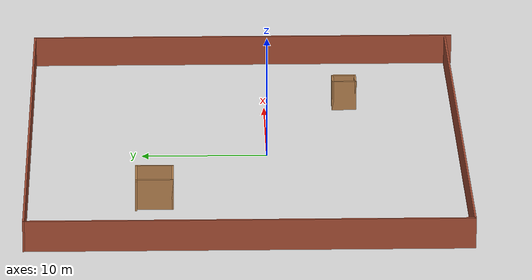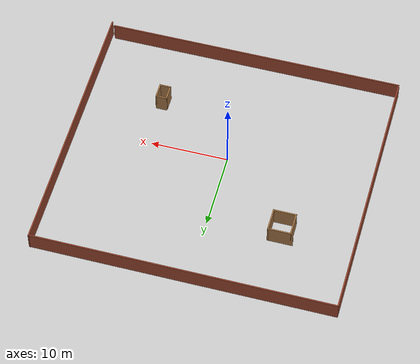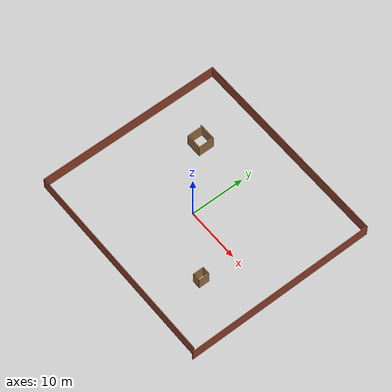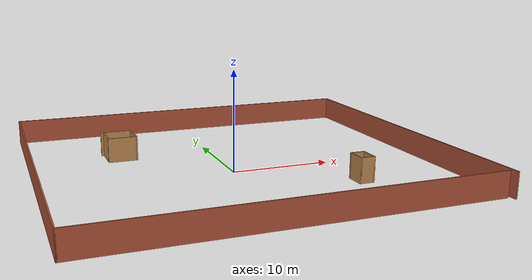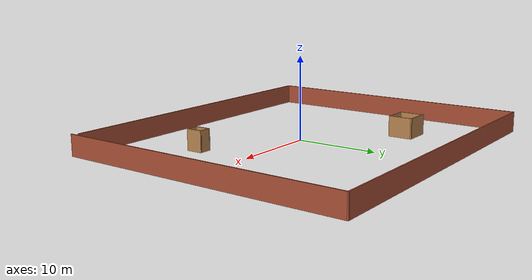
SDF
<?xml version='1.0'?>
<sdf version='1.6'>
  <model name='Scenerio_test_formation'>
    <pose frame=''>0.677154 1.51382 0 0 -0 0</pose>
    <link name='Wall_10'>
      <collision name='Wall_10_Collision'>
        <geometry>
          <box>
            <size>38.25 0.15 2.5</size>
          </box>
        </geometry>
        <pose frame=''>0 0 1.25 0 -0 0</pose>
      </collision>
      <visual name='Wall_10_Visual'>
        <pose frame=''>0 0 1.25 0 -0 0</pose>
        <geometry>
          <box>
            <size>38.25 0.15 2.5</size>
          </box>
        </geometry>
        <material>
          <script>
            <uri>file://media/materials/scripts/gazebo.material</uri>
            <name>Gazebo/Bricks</name>
          </script>
          <ambient>1 1 1 1</ambient>
        </material>
        <meta>
          <layer>0</layer>
        </meta>
      </visual>
      <pose frame=''>-0.25 -16.925 0 0 -0 0</pose>
    </link>
    <link name='Wall_12'>
      <collision name='Wall_12_Collision'>
        <geometry>
          <box>
            <size>3 0.15 2.5</size>
          </box>
        </geometry>
        <pose frame=''>0 0 1.25 0 -0 0</pose>
      </collision>
      <visual name='Wall_12_Visual'>
        <pose frame=''>0 0 1.25 0 -0 0</pose>
        <geometry>
          <box>
            <size>3 0.15 2.5</size>
          </box>
        </geometry>
        <material>
          <script>
            <uri>file://media/materials/scripts/gazebo.material</uri>
            <name>Gazebo/Wood</name>
          </script>
          <ambient>1 1 1 1</ambient>
        </material>
        <meta>
          <layer>0</layer>
        </meta>
      </visual>
      <pose frame=''>-11.3902 7.47323 0 0 -0 -1.5708</pose>
    </link>
    <link name='Wall_13'>
      <collision name='Wall_13_Collision'>
        <geometry>
          <box>
            <size>3 0.15 2.5</size>
          </box>
        </geometry>
        <pose frame=''>0 0 1.25 0 -0 0</pose>
      </collision>
      <visual name='Wall_13_Visual'>
        <pose frame=''>0 0 1.25 0 -0 0</pose>
        <geometry>
          <box>
            <size>3 0.15 2.5</size>
          </box>
        </geometry>
        <material>
          <script>
            <uri>file://media/materials/scripts/gazebo.material</uri>
            <name>Gazebo/Wood</name>
          </script>
          <ambient>1 1 1 1</ambient>
        </material>
        <meta>
          <layer>0</layer>
        </meta>
      </visual>
      <pose frame=''>-9.96522 6.04823 0 0 -0 0</pose>
    </link>
    <link name='Wall_14'>
      <collision name='Wall_14_Collision'>
        <geometry>
          <box>
            <size>3 0.15 2.5</size>
          </box>
        </geometry>
        <pose frame=''>0 0 1.25 0 -0 0</pose>
      </collision>
      <visual name='Wall_14_Visual'>
        <pose frame=''>0 0 1.25 0 -0 0</pose>
        <geometry>
          <box>
            <size>3 0.15 2.5</size>
          </box>
        </geometry>
        <material>
          <script>
            <uri>file://media/materials/scripts/gazebo.material</uri>
            <name>Gazebo/Wood</name>
          </script>
          <ambient>1 1 1 1</ambient>
        </material>
        <meta>
          <layer>0</layer>
        </meta>
      </visual>
      <pose frame=''>-8.54022 7.47323 0 0 -0 1.5708</pose>
    </link>
    <link name='Wall_15'>
      <collision name='Wall_15_Collision'>
        <geometry>
          <box>
            <size>3.25 0.15 2.5</size>
          </box>
        </geometry>
        <pose frame=''>0 0 1.25 0 -0 0</pose>
      </collision>
      <visual name='Wall_15_Visual'>
        <pose frame=''>0 0 1.25 0 -0 0</pose>
        <geometry>
          <box>
            <size>3.25 0.15 2.5</size>
          </box>
        </geometry>
        <material>
          <script>
            <uri>file://media/materials/scripts/gazebo.material</uri>
            <name>Gazebo/Wood</name>
          </script>
          <ambient>1 1 1 1</ambient>
        </material>
        <meta>
          <layer>0</layer>
        </meta>
      </visual>
      <pose frame=''>-10.0902 8.89823 0 0 -0 3.14159</pose>
    </link>
    <link name='Wall_17'>
      <collision name='Wall_17_Collision'>
        <geometry>
          <box>
            <size>2 0.15 2.5</size>
          </box>
        </geometry>
        <pose frame=''>0 0 1.25 0 -0 0</pose>
      </collision>
      <visual name='Wall_17_Visual'>
        <pose frame=''>0 0 1.25 0 -0 0</pose>
        <geometry>
          <box>
            <size>2 0.15 2.5</size>
          </box>
        </geometry>
        <material>
          <script>
            <uri>file://media/materials/scripts/gazebo.material</uri>
            <name>Gazebo/Wood</name>
          </script>
          <ambient>1 1 1 1</ambient>
        </material>
        <meta>
          <layer>0</layer>
        </meta>
      </visual>
      <pose frame=''>8.95306 -8.08544 0 0 -0 -1.5708</pose>
    </link>
    <link name='Wall_18'>
      <collision name='Wall_18_Collision'>
        <geometry>
          <box>
            <size>1.5 0.15 2.5</size>
          </box>
        </geometry>
        <pose frame=''>0 0 1.25 0 -0 0</pose>
      </collision>
      <visual name='Wall_18_Visual'>
        <pose frame=''>0 0 1.25 0 -0 0</pose>
        <geometry>
          <box>
            <size>1.5 0.15 2.5</size>
          </box>
        </geometry>
        <material>
          <script>
            <uri>file://media/materials/scripts/gazebo.material</uri>
            <name>Gazebo/Wood</name>
          </script>
          <ambient>1 1 1 1</ambient>
        </material>
        <meta>
          <layer>0</layer>
        </meta>
      </visual>
      <pose frame=''>9.62806 -9.01044 0 0 -0 0</pose>
    </link>
    <link name='Wall_19'>
      <collision name='Wall_19_Collision'>
        <geometry>
          <box>
            <size>2 0.15 2.5</size>
          </box>
        </geometry>
        <pose frame=''>0 0 1.25 0 -0 0</pose>
      </collision>
      <visual name='Wall_19_Visual'>
        <pose frame=''>0 0 1.25 0 -0 0</pose>
        <geometry>
          <box>
            <size>2 0.15 2.5</size>
          </box>
        </geometry>
        <material>
          <script>
            <uri>file://media/materials/scripts/gazebo.material</uri>
            <name>Gazebo/Wood</name>
          </script>
          <ambient>1 1 1 1</ambient>
        </material>
        <meta>
          <layer>0</layer>
        </meta>
      </visual>
      <pose frame=''>10.3031 -8.08544 0 0 -0 1.5708</pose>
    </link>
    <link name='Wall_20'>
      <collision name='Wall_20_Collision'>
        <geometry>
          <box>
            <size>1.5 0.15 2.5</size>
          </box>
        </geometry>
        <pose frame=''>0 0 1.25 0 -0 0</pose>
      </collision>
      <visual name='Wall_20_Visual'>
        <pose frame=''>0 0 1.25 0 -0 0</pose>
        <geometry>
          <box>
            <size>1.5 0.15 2.5</size>
          </box>
        </geometry>
        <material>
          <script>
            <uri>file://media/materials/scripts/gazebo.material</uri>
            <name>Gazebo/Wood</name>
          </script>
          <ambient>1 1 1 1</ambient>
        </material>
        <meta>
          <layer>0</layer>
        </meta>
      </visual>
      <pose frame=''>9.62806 -7.16044 0 0 -0 3.14159</pose>
    </link>
    <link name='Wall_7'>
      <collision name='Wall_7_Collision'>
        <geometry>
          <box>
            <size>35 0.15 2.5</size>
          </box>
        </geometry>
        <pose frame=''>0 0 1.25 0 -0 0</pose>
      </collision>
      <visual name='Wall_7_Visual'>
        <pose frame=''>0 0 1.25 0 -0 0</pose>
        <geometry>
          <box>
            <size>35 0.15 2.5</size>
          </box>
        </geometry>
        <material>
          <script>
            <uri>file://media/materials/scripts/gazebo.material</uri>
            <name>Gazebo/Bricks</name>
          </script>
          <ambient>1 1 1 1</ambient>
        </material>
        <meta>
          <layer>0</layer>
        </meta>
      </visual>
      <pose frame=''>19.3 -0 0 0 -0 1.5708</pose>
    </link>
    <link name='Wall_8'>
      <collision name='Wall_8_Collision'>
        <geometry>
          <box>
            <size>38.75 0.15 2.5</size>
          </box>
        </geometry>
        <pose frame=''>0 0 1.25 0 -0 0</pose>
      </collision>
      <visual name='Wall_8_Visual'>
        <pose frame=''>0 0 1.25 0 -0 0</pose>
        <geometry>
          <box>
            <size>38.75 0.15 2.5</size>
          </box>
        </geometry>
        <material>
          <script>
            <uri>file://media/materials/scripts/gazebo.material</uri>
            <name>Gazebo/Bricks</name>
          </script>
          <ambient>1 1 1 1</ambient>
        </material>
        <meta>
          <layer>0</layer>
        </meta>
      </visual>
      <pose frame=''>0 17.425 0 0 -0 3.14159</pose>
    </link>
    <link name='Wall_9'>
      <collision name='Wall_9_Collision'>
        <geometry>
          <box>
            <size>34.5 0.15 2.5</size>
          </box>
        </geometry>
        <pose frame=''>0 0 1.25 0 -0 0</pose>
      </collision>
      <visual name='Wall_9_Visual'>
        <pose frame=''>0 0 1.25 0 -0 0</pose>
        <geometry>
          <box>
            <size>34.5 0.15 2.5</size>
          </box>
        </geometry>
        <material>
          <script>
            <uri>file://media/materials/scripts/gazebo.material</uri>
            <name>Gazebo/Bricks</name>
          </script>
          <ambient>1 1 1 1</ambient>
        </material>
        <meta>
          <layer>0</layer>
        </meta>
      </visual>
      <pose frame=''>-19.3 0.25 0 0 -0 -1.5708</pose>
    </link>
    <static>1</static>
  </model>
</sdf>
